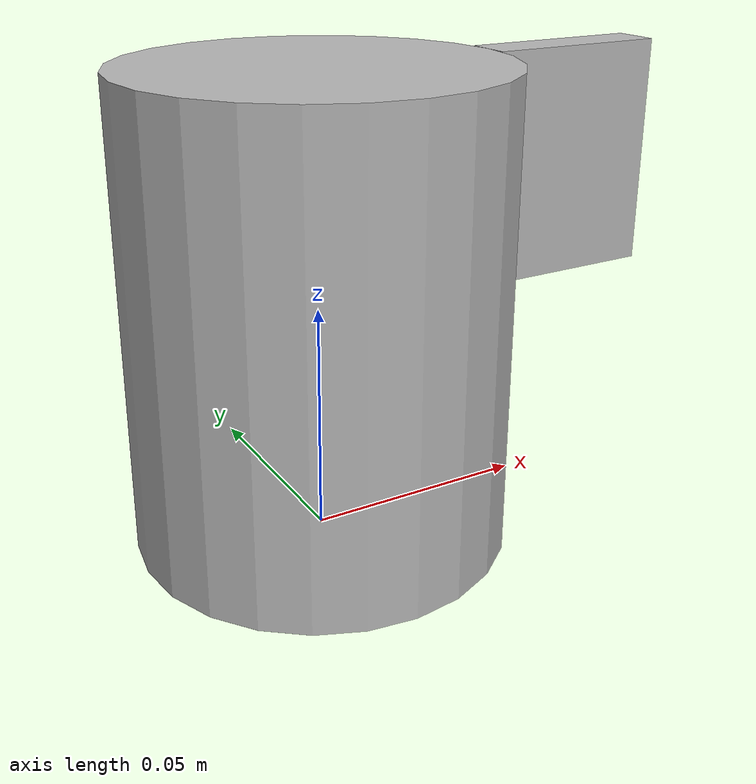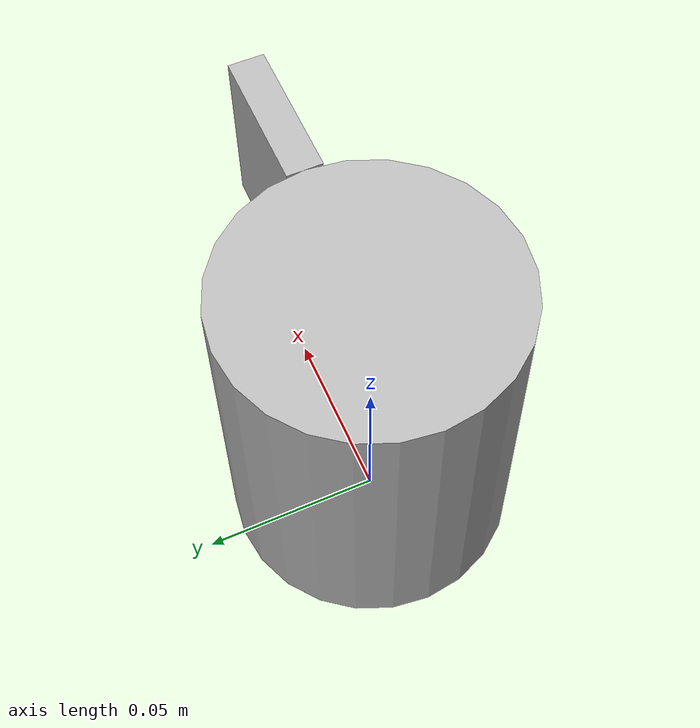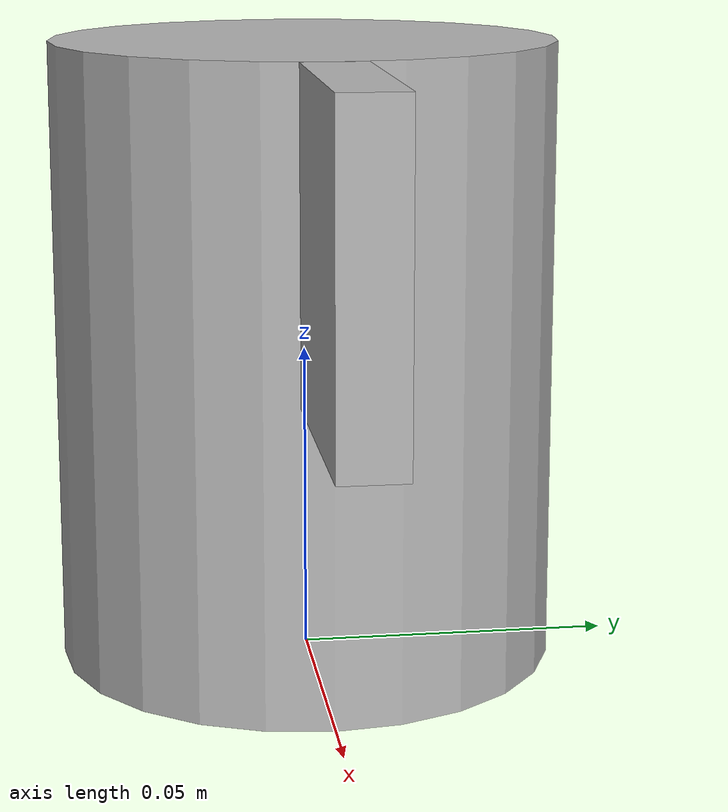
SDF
<?xml version="1.0"?>
<sdf version="1.6">
  <model name="rwc2022/cup">
    <link name="1_link">
      <collision name="1_col">
        <geometry>
          <cylinder>
            <length>0.10</length>
            <radius>0.04</radius>
          </cylinder>
        </geometry>
      </collision>
      <visual name="1_vis">
        <geometry>
          <cylinder>
            <length>0.10</length>
            <radius>0.04</radius>
          </cylinder>
        </geometry>
      </visual>
      <pose>0 0 0.05 0 0 0</pose>
    </link>
    <link name="2_link">
      <collision name="2_col">
        <geometry>
          <box>
            <size>0.03 0.01 0.05</size>
          </box>
        </geometry>
      </collision>
      <visual name="2_vis">
        <geometry>
          <box>
            <size>0.04 0.01 0.05</size>
          </box>
        </geometry>
      </visual>
      <pose>0.06 0 0.075 0 0 0</pose>
    </link>
    <static>true</static>
  </model>
</sdf>
